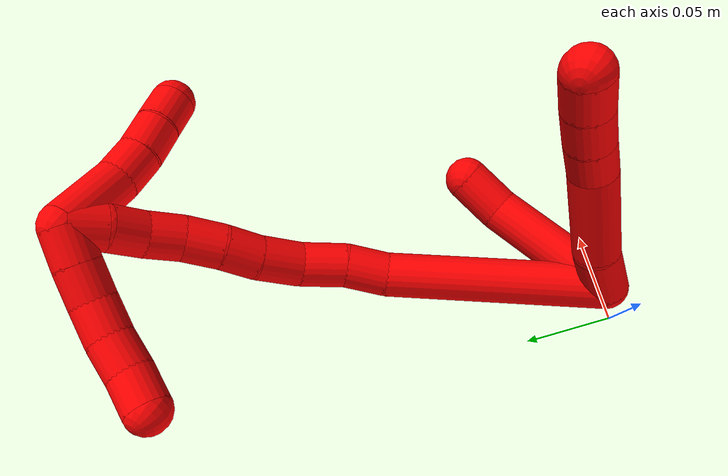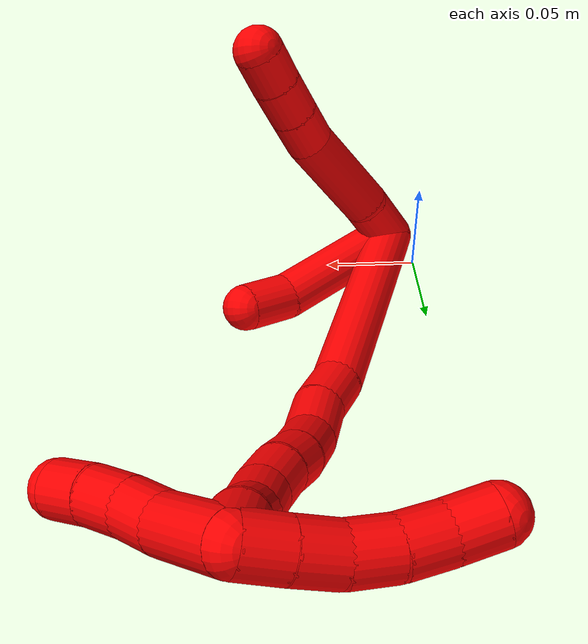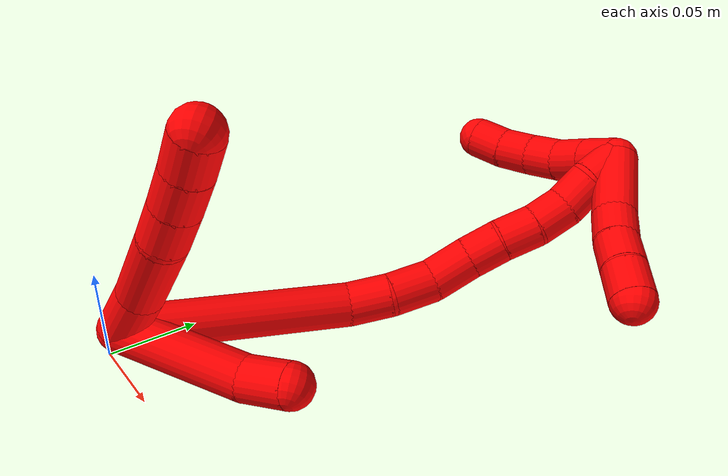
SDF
<sdf version="1.7">
 <world name="default">
  <model name="photoneo_s_sensor">
   <static>1</static>
   <pose>0 0 2 1.57079 1.57079 3.14159</pose>
   <link name="link">
    <inertial><mass>0.1</mass></inertial>
    <sensor name="sensor" type="depth">
     <update_rate>30</update_rate>
     <camera>
      <horizontal_fov>1.22</horizontal_fov>
      <image><width>1920</width><height>1200</height><format>B8G8R8</format></image>
      <clip><near>0.1</near><far>4</far></clip>
      <depth_camera><output>points</output></depth_camera>
     </camera>
     <plugin name="camera_plugin" filename="libgazebo_ros_depth_camera.so">
      <baseline>0.2</baseline>
      <alwaysOn>1</alwaysOn>
      <updateRate>0.0</updateRate>
      <cameraName>camera_ir</cameraName>
      <imageTopicName>/camera/color/image_raw</imageTopicName>
      <cameraInfoTopicName>/camera/color/camera_info</cameraInfoTopicName>
      <depthImageTopicName>/camera/depth/image_raw</depthImageTopicName>
      <depthImageCameraInfoTopicName>/camera/depth/camera_info</depthImageCameraInfoTopicName>
      <pointCloudTopicName>/camera/depth/points</pointCloudTopicName>
      <frameName>fr_optical</frameName>
      <pointCloudCutoff>0.1</pointCloudCutoff>
      <pointCloudCutoffMax>2.0</pointCloudCutoffMax>
      <distortionK1>0</distortionK1>
      <distortionK2>0</distortionK2>
      <distortionK3>0</distortionK3>
      <distortionT1>0</distortionT1>
      <distortionT2>0</distortionT2>
      <CxPrime>0</CxPrime>
      <Cx>0</Cx>
      <Cy>0</Cy>
      <focalLength>0</focalLength>
      <hackBaseline>0</hackBaseline>
     </plugin>
    </sensor>
   </link>
  </model>
  <model name="bin">
   <static>1</static>
   <link name="bottom">
    <collision name="collision-bottom">
     <pose>0 0 -0.01 0 -0 0</pose>
     <geometry><box><size>0.8 0.6 0.02</size></box></geometry>
     <surface>
      <friction><ode><mu>100</mu><mu2>100</mu2></ode></friction>
      <contact><collide_bitmask>65535</collide_bitmask></contact>
     </surface>
    </collision>
   </link>
   <link name="west_wall">
    <collision name="collision-west_wall">
     <pose>-0.41 0 0.1 0 -0 0</pose>
     <geometry><box><size>0.02 0.6 0.2</size></box></geometry>
     <surface>
      <friction><ode><mu>100</mu><mu2>100</mu2></ode></friction>
      <contact><collide_bitmask>65535</collide_bitmask></contact>
     </surface>
    </collision>
   </link>
   <link name="east_wall">
    <collision name="collision-east_wall">
     <pose>0.41 0 0.1 0 -0 0</pose>
     <geometry><box><size>0.02 0.6 0.2</size></box></geometry>
     <surface>
      <friction><ode><mu>100</mu><mu2>100</mu2></ode></friction>
      <contact><collide_bitmask>65535</collide_bitmask></contact>
     </surface>
    </collision>
   </link>
   <link name="south_wall">
    <collision name="collision-south_wall">
     <pose>0 -0.31 0.1 0 -0 0</pose>
     <geometry><box><size>0.8 0.02 0.2</size></box></geometry>
     <surface>
      <friction><ode><mu>100</mu><mu2>100</mu2></ode></friction>
      <contact><collide_bitmask>65535</collide_bitmask></contact>
     </surface>
    </collision>
   </link>
   <link name="north_wall">
    <collision name="collision-north_wall">
     <pose>0 0.31 0.1 0 -0 0</pose>
     <geometry><box><size>0.8 0.02 0.2</size></box></geometry>
     <surface>
      <friction><ode><mu>100</mu><mu2>100</mu2></ode></friction>
      <contact><collide_bitmask>65535</collide_bitmask></contact>
     </surface>
    </collision>
   </link>
  </model>
  <model name="2">
   <static>0</static>
   <link name="2">
    <collision name="collision-cylinder-e_1_2_8">
     <pose>0.015584 -0.003752 0.003926 0.762656 1.23549 0.555059</pose>
     <geometry><cylinder><radius>0.0125</radius><length>0.033007</length></cylinder></geometry>
     <surface>
      <friction><ode><mu>1.16</mu><mu2>1.16</mu2><slip1>0</slip1><slip2>0</slip2></ode></friction>
      <contact><ode><kp>1e+06</kp><kd>1</kd><max_vel>0</max_vel><min_depth>0.001</min_depth></ode></contact>
     </surface>
    </collision>
    <visual name="visual-cylinder-e_1_2_8">
     <pose>0.015584 -0.003752 0.003926 0.762656 1.23549 0.555059</pose>
     <geometry><cylinder><radius>0.0125</radius><length>0.033007</length></cylinder></geometry>
     <material><ambient>1 0 0 1</ambient></material>
    </visual>
    <collision name="collision-cylinder-e_2_8_9">
     <pose>0.056687 -0.015438 0.009037 1.42266 1.2662 1.12793</pose>
     <geometry><cylinder><radius>0.0125</radius><length>0.053498</length></cylinder></geometry>
     <surface>
      <friction><ode><mu>1.16</mu><mu2>1.16</mu2><slip1>0</slip1><slip2>0</slip2></ode></friction>
      <contact><ode><kp>1e+06</kp><kd>1</kd><max_vel>0</max_vel><min_depth>0.001</min_depth></ode></contact>
     </surface>
    </collision>
    <visual name="visual-cylinder-e_2_8_9">
     <pose>0.056687 -0.015438 0.009037 1.42266 1.2662 1.12793</pose>
     <geometry><cylinder><radius>0.0125</radius><length>0.053498</length></cylinder></geometry>
     <material><ambient>1 0 0 1</ambient></material>
    </visual>
    <collision name="collision-cylinder-e_3_9_10">
     <pose>0.092004 -0.026745 0.013142 0.85709 1.14353 0.571838</pose>
     <geometry><cylinder><radius>0.0125</radius><length>0.021535</length></cylinder></geometry>
     <surface>
      <friction><ode><mu>1.16</mu><mu2>1.16</mu2><slip1>0</slip1><slip2>0</slip2></ode></friction>
      <contact><ode><kp>1e+06</kp><kd>1</kd><max_vel>0</max_vel><min_depth>0.001</min_depth></ode></contact>
     </surface>
    </collision>
    <visual name="visual-cylinder-e_3_9_10">
     <pose>0.092004 -0.026745 0.013142 0.85709 1.14353 0.571838</pose>
     <geometry><cylinder><radius>0.0125</radius><length>0.021535</length></cylinder></geometry>
     <material><ambient>1 0 0 1</ambient></material>
    </visual>
    <collision name="collision-cylinder-e_4_10_11">
     <pose>0.111547 -0.033746 0.018742 0.934698 1.13727 0.623912</pose>
     <geometry><cylinder><radius>0.0125</radius><length>0.021474</length></cylinder></geometry>
     <surface>
      <friction><ode><mu>1.16</mu><mu2>1.16</mu2><slip1>0</slip1><slip2>0</slip2></ode></friction>
      <contact><ode><kp>1e+06</kp><kd>1</kd><max_vel>0</max_vel><min_depth>0.001</min_depth></ode></contact>
     </surface>
    </collision>
    <visual name="visual-cylinder-e_4_10_11">
     <pose>0.111547 -0.033746 0.018742 0.934698 1.13727 0.623912</pose>
     <geometry><cylinder><radius>0.0125</radius><length>0.021474</length></cylinder></geometry>
     <material><ambient>1 0 0 1</ambient></material>
    </visual>
    <collision name="collision-cylinder-e_5_11_6">
     <pose>0.130441 -0.041231 0.023935 0.993327 1.10466 0.644755</pose>
     <geometry><cylinder><radius>0.0125</radius><length>0.020487</length></cylinder></geometry>
     <surface>
      <friction><ode><mu>1.16</mu><mu2>1.16</mu2><slip1>0</slip1><slip2>0</slip2></ode></friction>
      <contact><ode><kp>1e+06</kp><kd>1</kd><max_vel>0</max_vel><min_depth>0.001</min_depth></ode></contact>
     </surface>
    </collision>
    <visual name="visual-cylinder-e_5_11_6">
     <pose>0.130441 -0.041231 0.023935 0.993327 1.10466 0.644755</pose>
     <geometry><cylinder><radius>0.0125</radius><length>0.020487</length></cylinder></geometry>
     <material><ambient>1 0 0 1</ambient></material>
    </visual>
    <collision name="collision-cylinder-e_1_2_12">
     <pose>0.024536 0.026343 -0.008136 -1.87036 0.727218 -0.952405</pose>
     <geometry><cylinder><radius>0.0125</radius><length>0.073814</length></cylinder></geometry>
     <surface>
      <friction><ode><mu>1.16</mu><mu2>1.16</mu2><slip1>0</slip1><slip2>0</slip2></ode></friction>
      <contact><ode><kp>1e+06</kp><kd>1</kd><max_vel>0</max_vel><min_depth>0.001</min_depth></ode></contact>
     </surface>
    </collision>
    <visual name="visual-cylinder-e_1_2_12">
     <pose>0.024536 0.026343 -0.008136 -1.87036 0.727218 -0.952405</pose>
     <geometry><cylinder><radius>0.0125</radius><length>0.073814</length></cylinder></geometry>
     <material><ambient>1 0 0 1</ambient></material>
    </visual>
    <collision name="collision-cylinder-e_2_12_5">
     <pose>0.060218 0.059363 -0.017883 -1.80753 1.01854 -1.23367</pose>
     <geometry><cylinder><radius>0.0125</radius><length>0.026186</length></cylinder></geometry>
     <surface>
      <friction><ode><mu>1.16</mu><mu2>1.16</mu2><slip1>0</slip1><slip2>0</slip2></ode></friction>
      <contact><ode><kp>1e+06</kp><kd>1</kd><max_vel>0</max_vel><min_depth>0.001</min_depth></ode></contact>
     </surface>
    </collision>
    <visual name="visual-cylinder-e_2_12_5">
     <pose>0.060218 0.059363 -0.017883 -1.80753 1.01854 -1.23367</pose>
     <geometry><cylinder><radius>0.0125</radius><length>0.026186</length></cylinder></geometry>
     <material><ambient>1 0 0 1</ambient></material>
    </visual>
    <collision name="collision-cylinder-e_1_2_13">
     <pose>0.02856 0.048319 0.023989 -1.10997 0.486909 -0.305586</pose>
     <geometry><cylinder><radius>0.0125</radius><length>0.12208</length></cylinder></geometry>
     <surface>
      <friction><ode><mu>1.16</mu><mu2>1.16</mu2><slip1>0</slip1><slip2>0</slip2></ode></friction>
      <contact><ode><kp>1e+06</kp><kd>1</kd><max_vel>0</max_vel><min_depth>0.001</min_depth></ode></contact>
     </surface>
    </collision>
    <visual name="visual-cylinder-e_1_2_13">
     <pose>0.02856 0.048319 0.023989 -1.10997 0.486909 -0.305586</pose>
     <geometry><cylinder><radius>0.0125</radius><length>0.12208</length></cylinder></geometry>
     <material><ambient>1 0 0 1</ambient></material>
    </visual>
    <collision name="collision-cylinder-e_2_13_14">
     <pose>0.065179 0.104404 0.052659 -1.02835 0.726512 -0.423008</pose>
     <geometry><cylinder><radius>0.0125</radius><length>0.024262</length></cylinder></geometry>
     <surface>
      <friction><ode><mu>1.16</mu><mu2>1.16</mu2><slip1>0</slip1><slip2>0</slip2></ode></friction>
      <contact><ode><kp>1e+06</kp><kd>1</kd><max_vel>0</max_vel><min_depth>0.001</min_depth></ode></contact>
     </surface>
    </collision>
    <visual name="visual-cylinder-e_2_13_14">
     <pose>0.065179 0.104404 0.052659 -1.02835 0.726512 -0.423008</pose>
     <geometry><cylinder><radius>0.0125</radius><length>0.024262</length></cylinder></geometry>
     <material><ambient>1 0 0 1</ambient></material>
    </visual>
    <collision name="collision-cylinder-e_3_14_15">
     <pose>0.080153 0.120449 0.064315 -0.870698 0.568472 -0.270107</pose>
     <geometry><cylinder><radius>0.0125</radius><length>0.025692</length></cylinder></geometry>
     <surface>
      <friction><ode><mu>1.16</mu><mu2>1.16</mu2><slip1>0</slip1><slip2>0</slip2></ode></friction>
      <contact><ode><kp>1e+06</kp><kd>1</kd><max_vel>0</max_vel><min_depth>0.001</min_depth></ode></contact>
     </surface>
    </collision>
    <visual name="visual-cylinder-e_3_14_15">
     <pose>0.080153 0.120449 0.064315 -0.870698 0.568472 -0.270107</pose>
     <geometry><cylinder><radius>0.0125</radius><length>0.025692</length></cylinder></geometry>
     <material><ambient>1 0 0 1</ambient></material>
    </visual>
    <collision name="collision-cylinder-e_4_15_16">
     <pose>0.096132 0.133488 0.078695 -0.571235 0.800054 -0.247058</pose>
     <geometry><cylinder><radius>0.0125</radius><length>0.025269</length></cylinder></geometry>
     <surface>
      <friction><ode><mu>1.16</mu><mu2>1.16</mu2><slip1>0</slip1><slip2>0</slip2></ode></friction>
      <contact><ode><kp>1e+06</kp><kd>1</kd><max_vel>0</max_vel><min_depth>0.001</min_depth></ode></contact>
     </surface>
    </collision>
    <visual name="visual-cylinder-e_4_15_16">
     <pose>0.096132 0.133488 0.078695 -0.571235 0.800054 -0.247058</pose>
     <geometry><cylinder><radius>0.0125</radius><length>0.025269</length></cylinder></geometry>
     <material><ambient>1 0 0 1</ambient></material>
    </visual>
    <collision name="collision-cylinder-e_5_16_17">
     <pose>0.113362 0.141924 0.091047 -0.639122 0.924117 -0.326653</pose>
     <geometry><cylinder><radius>0.0125</radius><length>0.020462</length></cylinder></geometry>
     <surface>
      <friction><ode><mu>1.16</mu><mu2>1.16</mu2><slip1>0</slip1><slip2>0</slip2></ode></friction>
      <contact><ode><kp>1e+06</kp><kd>1</kd><max_vel>0</max_vel><min_depth>0.001</min_depth></ode></contact>
     </surface>
    </collision>
    <visual name="visual-cylinder-e_5_16_17">
     <pose>0.113362 0.141924 0.091047 -0.639122 0.924117 -0.326653</pose>
     <geometry><cylinder><radius>0.0125</radius><length>0.020462</length></cylinder></geometry>
     <material><ambient>1 0 0 1</ambient></material>
    </visual>
    <collision name="collision-cylinder-e_6_17_18">
     <pose>0.129289 0.150735 0.101288 -0.770176 0.811073 -0.344589</pose>
     <geometry><cylinder><radius>0.0125</radius><length>0.021412</length></cylinder></geometry>
     <surface>
      <friction><ode><mu>1.16</mu><mu2>1.16</mu2><slip1>0</slip1><slip2>0</slip2></ode></friction>
      <contact><ode><kp>1e+06</kp><kd>1</kd><max_vel>0</max_vel><min_depth>0.001</min_depth></ode></contact>
     </surface>
    </collision>
    <visual name="visual-cylinder-e_6_17_18">
     <pose>0.129289 0.150735 0.101288 -0.770176 0.811073 -0.344589</pose>
     <geometry><cylinder><radius>0.0125</radius><length>0.021412</length></cylinder></geometry>
     <material><ambient>1 0 0 1</ambient></material>
    </visual>
    <collision name="collision-cylinder-e_7_18_19">
     <pose>0.143994 0.159784 0.113052 -0.544136 0.742591 -0.2164</pose>
     <geometry><cylinder><radius>0.0125</radius><length>0.020534</length></cylinder></geometry>
     <surface>
      <friction><ode><mu>1.16</mu><mu2>1.16</mu2><slip1>0</slip1><slip2>0</slip2></ode></friction>
      <contact><ode><kp>1e+06</kp><kd>1</kd><max_vel>0</max_vel><min_depth>0.001</min_depth></ode></contact>
     </surface>
    </collision>
    <visual name="visual-cylinder-e_7_18_19">
     <pose>0.143994 0.159784 0.113052 -0.544136 0.742591 -0.2164</pose>
     <geometry><cylinder><radius>0.0125</radius><length>0.020534</length></cylinder></geometry>
     <material><ambient>1 0 0 1</ambient></material>
    </visual>
    <collision name="collision-cylinder-e_8_19_20">
     <pose>0.158404 0.16486 0.126188 -0.172357 0.834716 -0.076577</pose>
     <geometry><cylinder><radius>0.0125</radius><length>0.020152</length></cylinder></geometry>
     <surface>
      <friction><ode><mu>1.16</mu><mu2>1.16</mu2><slip1>0</slip1><slip2>0</slip2></ode></friction>
      <contact><ode><kp>1e+06</kp><kd>1</kd><max_vel>0</max_vel><min_depth>0.001</min_depth></ode></contact>
     </surface>
    </collision>
    <visual name="visual-cylinder-e_8_19_20">
     <pose>0.158404 0.16486 0.126188 -0.172357 0.834716 -0.076577</pose>
     <geometry><cylinder><radius>0.0125</radius><length>0.020152</length></cylinder></geometry>
     <material><ambient>1 0 0 1</ambient></material>
    </visual>
    <collision name="collision-cylinder-e_9_20_1">
     <pose>0.172318 0.169351 0.139832 -0.445268 0.694975 -0.163621</pose>
     <geometry><cylinder><radius>0.0125</radius><length>0.020137</length></cylinder></geometry>
     <surface>
      <friction><ode><mu>1.16</mu><mu2>1.16</mu2><slip1>0</slip1><slip2>0</slip2></ode></friction>
      <contact><ode><kp>1e+06</kp><kd>1</kd><max_vel>0</max_vel><min_depth>0.001</min_depth></ode></contact>
     </surface>
    </collision>
    <visual name="visual-cylinder-e_9_20_1">
     <pose>0.172318 0.169351 0.139832 -0.445268 0.694975 -0.163621</pose>
     <geometry><cylinder><radius>0.0125</radius><length>0.020137</length></cylinder></geometry>
     <material><ambient>1 0 0 1</ambient></material>
    </visual>
    <collision name="collision-cylinder-e_1_1_21">
     <pose>0.169653 0.171551 0.15077 0.278192 -1.1464 -0.180249</pose>
     <geometry><cylinder><radius>0.0125</radius><length>0.02</length></cylinder></geometry>
     <surface>
      <friction><ode><mu>1.16</mu><mu2>1.16</mu2><slip1>0</slip1><slip2>0</slip2></ode></friction>
      <contact><ode><kp>1e+06</kp><kd>1</kd><max_vel>0</max_vel><min_depth>0.001</min_depth></ode></contact>
     </surface>
    </collision>
    <visual name="visual-cylinder-e_1_1_21">
     <pose>0.169653 0.171551 0.15077 0.278192 -1.1464 -0.180249</pose>
     <geometry><cylinder><radius>0.0125</radius><length>0.02</length></cylinder></geometry>
     <material><ambient>1 0 0 1</ambient></material>
    </visual>
    <collision name="collision-cylinder-e_2_21_22">
     <pose>0.151298 0.169039 0.158289 0.370269 -1.17905 -0.249231</pose>
     <geometry><cylinder><radius>0.0125</radius><length>0.02</length></cylinder></geometry>
     <surface>
      <friction><ode><mu>1.16</mu><mu2>1.16</mu2><slip1>0</slip1><slip2>0</slip2></ode></friction>
      <contact><ode><kp>1e+06</kp><kd>1</kd><max_vel>0</max_vel><min_depth>0.001</min_depth></ode></contact>
     </surface>
    </collision>
    <visual name="visual-cylinder-e_2_21_22">
     <pose>0.151298 0.169039 0.158289 0.370269 -1.17905 -0.249231</pose>
     <geometry><cylinder><radius>0.0125</radius><length>0.02</length></cylinder></geometry>
     <material><ambient>1 0 0 1</ambient></material>
    </visual>
    <collision name="collision-cylinder-e_3_22_23">
     <pose>0.133612 0.164284 0.166012 0.680867 -1.00521 -0.384613</pose>
     <geometry><cylinder><radius>0.0125</radius><length>0.02</length></cylinder></geometry>
     <surface>
      <friction><ode><mu>1.16</mu><mu2>1.16</mu2><slip1>0</slip1><slip2>0</slip2></ode></friction>
      <contact><ode><kp>1e+06</kp><kd>1</kd><max_vel>0</max_vel><min_depth>0.001</min_depth></ode></contact>
     </surface>
    </collision>
    <visual name="visual-cylinder-e_3_22_23">
     <pose>0.133612 0.164284 0.166012 0.680867 -1.00521 -0.384613</pose>
     <geometry><cylinder><radius>0.0125</radius><length>0.02</length></cylinder></geometry>
     <material><ambient>1 0 0 1</ambient></material>
    </visual>
    <collision name="collision-cylinder-e_4_23_24">
     <pose>0.117158 0.156198 0.173864 0.906786 -0.929323 -0.479103</pose>
     <geometry><cylinder><radius>0.0125</radius><length>0.02</length></cylinder></geometry>
     <surface>
      <friction><ode><mu>1.16</mu><mu2>1.16</mu2><slip1>0</slip1><slip2>0</slip2></ode></friction>
      <contact><ode><kp>1e+06</kp><kd>1</kd><max_vel>0</max_vel><min_depth>0.001</min_depth></ode></contact>
     </surface>
    </collision>
    <visual name="visual-cylinder-e_4_23_24">
     <pose>0.117158 0.156198 0.173864 0.906786 -0.929323 -0.479103</pose>
     <geometry><cylinder><radius>0.0125</radius><length>0.02</length></cylinder></geometry>
     <material><ambient>1 0 0 1</ambient></material>
    </visual>
    <collision name="collision-cylinder-e_5_24_4">
     <pose>0.102095 0.146129 0.182198 0.85628 -0.782524 -0.372178</pose>
     <geometry><cylinder><radius>0.0125</radius><length>0.02</length></cylinder></geometry>
     <surface>
      <friction><ode><mu>1.16</mu><mu2>1.16</mu2><slip1>0</slip1><slip2>0</slip2></ode></friction>
      <contact><ode><kp>1e+06</kp><kd>1</kd><max_vel>0</max_vel><min_depth>0.001</min_depth></ode></contact>
     </surface>
    </collision>
    <visual name="visual-cylinder-e_5_24_4">
     <pose>0.102095 0.146129 0.182198 0.85628 -0.782524 -0.372178</pose>
     <geometry><cylinder><radius>0.0125</radius><length>0.02</length></cylinder></geometry>
     <material><ambient>1 0 0 1</ambient></material>
    </visual>
    <collision name="collision-cylinder-e_1_1_25">
     <pose>0.178279 0.173563 0.126888 -3.0974 -0.024382 1.00815</pose>
     <geometry><cylinder><radius>0.0125</radius><length>0.039897</length></cylinder></geometry>
     <surface>
      <friction><ode><mu>1.16</mu><mu2>1.16</mu2><slip1>0</slip1><slip2>0</slip2></ode></friction>
      <contact><ode><kp>1e+06</kp><kd>1</kd><max_vel>0</max_vel><min_depth>0.001</min_depth></ode></contact>
     </surface>
    </collision>
    <visual name="visual-cylinder-e_1_1_25">
     <pose>0.178279 0.173563 0.126888 -3.0974 -0.024382 1.00815</pose>
     <geometry><cylinder><radius>0.0125</radius><length>0.039897</length></cylinder></geometry>
     <material><ambient>1 0 0 1</ambient></material>
    </visual>
    <collision name="collision-cylinder-e_2_25_26">
     <pose>0.179333 0.173613 0.097118 3.05735 0.154577 2.14485</pose>
     <geometry><cylinder><radius>0.0125</radius><length>0.020001</length></cylinder></geometry>
     <surface>
      <friction><ode><mu>1.16</mu><mu2>1.16</mu2><slip1>0</slip1><slip2>0</slip2></ode></friction>
      <contact><ode><kp>1e+06</kp><kd>1</kd><max_vel>0</max_vel><min_depth>0.001</min_depth></ode></contact>
     </surface>
    </collision>
    <visual name="visual-cylinder-e_2_25_26">
     <pose>0.179333 0.173613 0.097118 3.05735 0.154577 2.14485</pose>
     <geometry><cylinder><radius>0.0125</radius><length>0.020001</length></cylinder></geometry>
     <material><ambient>1 0 0 1</ambient></material>
    </visual>
    <collision name="collision-cylinder-e_3_26_27">
     <pose>0.183525 0.172689 0.077585 3.13209 0.267283 3.07093</pose>
     <geometry><cylinder><radius>0.0125</radius><length>0.020087</length></cylinder></geometry>
     <surface>
      <friction><ode><mu>1.16</mu><mu2>1.16</mu2><slip1>0</slip1><slip2>0</slip2></ode></friction>
      <contact><ode><kp>1e+06</kp><kd>1</kd><max_vel>0</max_vel><min_depth>0.001</min_depth></ode></contact>
     </surface>
    </collision>
    <visual name="visual-cylinder-e_3_26_27">
     <pose>0.183525 0.172689 0.077585 3.13209 0.267283 3.07093</pose>
     <geometry><cylinder><radius>0.0125</radius><length>0.020087</length></cylinder></geometry>
     <material><ambient>1 0 0 1</ambient></material>
    </visual>
    <collision name="collision-cylinder-e_4_27_3">
     <pose>0.188303 0.173534 0.058165 -3.04566 0.213977 -2.30092</pose>
     <geometry><cylinder><radius>0.0125</radius><length>0.020015</length></cylinder></geometry>
     <surface>
      <friction><ode><mu>1.16</mu><mu2>1.16</mu2><slip1>0</slip1><slip2>0</slip2></ode></friction>
      <contact><ode><kp>1e+06</kp><kd>1</kd><max_vel>0</max_vel><min_depth>0.001</min_depth></ode></contact>
     </surface>
    </collision>
    <visual name="visual-cylinder-e_4_27_3">
     <pose>0.188303 0.173534 0.058165 -3.04566 0.213977 -2.30092</pose>
     <geometry><cylinder><radius>0.0125</radius><length>0.020015</length></cylinder></geometry>
     <material><ambient>1 0 0 1</ambient></material>
    </visual>
    <collision name="collision-sphere-3">
     <pose>0.190428 0.174471 0.048431 0 -0 0</pose>
     <geometry><sphere><radius>0.0125</radius></sphere></geometry>
     <surface>
      <friction><ode><mu>1.16</mu><mu2>1.16</mu2><slip1>0</slip1><slip2>0</slip2></ode></friction>
      <contact><ode><kp>1e+06</kp><kd>1</kd><max_vel>0</max_vel><min_depth>0.001</min_depth></ode></contact>
     </surface>
    </collision>
    <visual name="visual-sphere-3">
     <pose>0.190428 0.174471 0.048431 0 -0 0</pose>
     <geometry><sphere><radius>0.0125</radius></sphere></geometry>
     <material><ambient>1 0 0 1</ambient></material>
    </visual>
    <collision name="collision-sphere-27">
     <pose>0.186178 0.172597 0.067899 0 -0 0</pose>
     <geometry><sphere><radius>0.0125</radius></sphere></geometry>
     <surface>
      <friction><ode><mu>1.16</mu><mu2>1.16</mu2><slip1>0</slip1><slip2>0</slip2></ode></friction>
      <contact><ode><kp>1e+06</kp><kd>1</kd><max_vel>0</max_vel><min_depth>0.001</min_depth></ode></contact>
     </surface>
    </collision>
    <visual name="visual-sphere-27">
     <pose>0.186178 0.172597 0.067899 0 -0 0</pose>
     <geometry><sphere><radius>0.0125</radius></sphere></geometry>
     <material><ambient>1 0 0 1</ambient></material>
    </visual>
    <collision name="collision-sphere-26">
     <pose>0.180873 0.172781 0.087272 0 -0 0</pose>
     <geometry><sphere><radius>0.0125</radius></sphere></geometry>
     <surface>
      <friction><ode><mu>1.16</mu><mu2>1.16</mu2><slip1>0</slip1><slip2>0</slip2></ode></friction>
      <contact><ode><kp>1e+06</kp><kd>1</kd><max_vel>0</max_vel><min_depth>0.001</min_depth></ode></contact>
     </surface>
    </collision>
    <visual name="visual-sphere-26">
     <pose>0.180873 0.172781 0.087272 0 -0 0</pose>
     <geometry><sphere><radius>0.0125</radius></sphere></geometry>
     <material><ambient>1 0 0 1</ambient></material>
    </visual>
    <collision name="collision-sphere-25">
     <pose>0.177793 0.174444 0.106964 0 -0 0</pose>
     <geometry><sphere><radius>0.0125</radius></sphere></geometry>
     <surface>
      <friction><ode><mu>1.16</mu><mu2>1.16</mu2><slip1>0</slip1><slip2>0</slip2></ode></friction>
      <contact><ode><kp>1e+06</kp><kd>1</kd><max_vel>0</max_vel><min_depth>0.001</min_depth></ode></contact>
     </surface>
    </collision>
    <visual name="visual-sphere-25">
     <pose>0.177793 0.174444 0.106964 0 -0 0</pose>
     <geometry><sphere><radius>0.0125</radius></sphere></geometry>
     <material><ambient>1 0 0 1</ambient></material>
    </visual>
    <collision name="collision-sphere-4">
     <pose>0.095044 0.140772 0.186845 0 -0 0</pose>
     <geometry><sphere><radius>0.0125</radius></sphere></geometry>
     <surface>
      <friction><ode><mu>1.16</mu><mu2>1.16</mu2><slip1>0</slip1><slip2>0</slip2></ode></friction>
      <contact><ode><kp>1e+06</kp><kd>1</kd><max_vel>0</max_vel><min_depth>0.001</min_depth></ode></contact>
     </surface>
    </collision>
    <visual name="visual-sphere-4">
     <pose>0.095044 0.140772 0.186845 0 -0 0</pose>
     <geometry><sphere><radius>0.0125</radius></sphere></geometry>
     <material><ambient>1 0 0 1</ambient></material>
    </visual>
    <collision name="collision-sphere-24">
     <pose>0.109145 0.151486 0.177552 0 -0 0</pose>
     <geometry><sphere><radius>0.0125</radius></sphere></geometry>
     <surface>
      <friction><ode><mu>1.16</mu><mu2>1.16</mu2><slip1>0</slip1><slip2>0</slip2></ode></friction>
      <contact><ode><kp>1e+06</kp><kd>1</kd><max_vel>0</max_vel><min_depth>0.001</min_depth></ode></contact>
     </surface>
    </collision>
    <visual name="visual-sphere-24">
     <pose>0.109145 0.151486 0.177552 0 -0 0</pose>
     <geometry><sphere><radius>0.0125</radius></sphere></geometry>
     <material><ambient>1 0 0 1</ambient></material>
    </visual>
    <collision name="collision-sphere-23">
     <pose>0.12517 0.16091 0.170176 0 -0 0</pose>
     <geometry><sphere><radius>0.0125</radius></sphere></geometry>
     <surface>
      <friction><ode><mu>1.16</mu><mu2>1.16</mu2><slip1>0</slip1><slip2>0</slip2></ode></friction>
      <contact><ode><kp>1e+06</kp><kd>1</kd><max_vel>0</max_vel><min_depth>0.001</min_depth></ode></contact>
     </surface>
    </collision>
    <visual name="visual-sphere-23">
     <pose>0.12517 0.16091 0.170176 0 -0 0</pose>
     <geometry><sphere><radius>0.0125</radius></sphere></geometry>
     <material><ambient>1 0 0 1</ambient></material>
    </visual>
    <collision name="collision-sphere-22">
     <pose>0.142055 0.167657 0.161848 0 -0 0</pose>
     <geometry><sphere><radius>0.0125</radius></sphere></geometry>
     <surface>
      <friction><ode><mu>1.16</mu><mu2>1.16</mu2><slip1>0</slip1><slip2>0</slip2></ode></friction>
      <contact><ode><kp>1e+06</kp><kd>1</kd><max_vel>0</max_vel><min_depth>0.001</min_depth></ode></contact>
     </surface>
    </collision>
    <visual name="visual-sphere-22">
     <pose>0.142055 0.167657 0.161848 0 -0 0</pose>
     <geometry><sphere><radius>0.0125</radius></sphere></geometry>
     <material><ambient>1 0 0 1</ambient></material>
    </visual>
    <collision name="collision-sphere-21">
     <pose>0.16054 0.17042 0.154729 0 -0 0</pose>
     <geometry><sphere><radius>0.0125</radius></sphere></geometry>
     <surface>
      <friction><ode><mu>1.16</mu><mu2>1.16</mu2><slip1>0</slip1><slip2>0</slip2></ode></friction>
      <contact><ode><kp>1e+06</kp><kd>1</kd><max_vel>0</max_vel><min_depth>0.001</min_depth></ode></contact>
     </surface>
    </collision>
    <visual name="visual-sphere-21">
     <pose>0.16054 0.17042 0.154729 0 -0 0</pose>
     <geometry><sphere><radius>0.0125</radius></sphere></geometry>
     <material><ambient>1 0 0 1</ambient></material>
    </visual>
    <collision name="collision-sphere-1">
     <pose>0.178766 0.172682 0.146811 0 -0 0</pose>
     <geometry><sphere><radius>0.0125</radius></sphere></geometry>
     <surface>
      <friction><ode><mu>1.16</mu><mu2>1.16</mu2><slip1>0</slip1><slip2>0</slip2></ode></friction>
      <contact><ode><kp>1e+06</kp><kd>1</kd><max_vel>0</max_vel><min_depth>0.001</min_depth></ode></contact>
     </surface>
    </collision>
    <visual name="visual-sphere-1">
     <pose>0.178766 0.172682 0.146811 0 -0 0</pose>
     <geometry><sphere><radius>0.0125</radius></sphere></geometry>
     <material><ambient>1 0 0 1</ambient></material>
    </visual>
    <collision name="collision-sphere-6">
     <pose>0.139591 -0.045088 0.026448 0 -0 0</pose>
     <geometry><sphere><radius>0.0125</radius></sphere></geometry>
     <surface>
      <friction><ode><mu>1.16</mu><mu2>1.16</mu2><slip1>0</slip1><slip2>0</slip2></ode></friction>
      <contact><ode><kp>1e+06</kp><kd>1</kd><max_vel>0</max_vel><min_depth>0.001</min_depth></ode></contact>
     </surface>
    </collision>
    <visual name="visual-sphere-6">
     <pose>0.139591 -0.045088 0.026448 0 -0 0</pose>
     <geometry><sphere><radius>0.0125</radius></sphere></geometry>
     <material><ambient>1 0 0 1</ambient></material>
    </visual>
    <collision name="collision-sphere-11">
     <pose>0.12129 -0.037374 0.021421 0 -0 0</pose>
     <geometry><sphere><radius>0.0125</radius></sphere></geometry>
     <surface>
      <friction><ode><mu>1.16</mu><mu2>1.16</mu2><slip1>0</slip1><slip2>0</slip2></ode></friction>
      <contact><ode><kp>1e+06</kp><kd>1</kd><max_vel>0</max_vel><min_depth>0.001</min_depth></ode></contact>
     </surface>
    </collision>
    <visual name="visual-sphere-11">
     <pose>0.12129 -0.037374 0.021421 0 -0 0</pose>
     <geometry><sphere><radius>0.0125</radius></sphere></geometry>
     <material><ambient>1 0 0 1</ambient></material>
    </visual>
    <collision name="collision-sphere-10">
     <pose>0.101803 -0.030118 0.016063 0 -0 0</pose>
     <geometry><sphere><radius>0.0125</radius></sphere></geometry>
     <surface>
      <friction><ode><mu>1.16</mu><mu2>1.16</mu2><slip1>0</slip1><slip2>0</slip2></ode></friction>
      <contact><ode><kp>1e+06</kp><kd>1</kd><max_vel>0</max_vel><min_depth>0.001</min_depth></ode></contact>
     </surface>
    </collision>
    <visual name="visual-sphere-10">
     <pose>0.101803 -0.030118 0.016063 0 -0 0</pose>
     <geometry><sphere><radius>0.0125</radius></sphere></geometry>
     <material><ambient>1 0 0 1</ambient></material>
    </visual>
    <collision name="collision-sphere-9">
     <pose>0.082204 -0.023372 0.010221 0 -0 0</pose>
     <geometry><sphere><radius>0.0125</radius></sphere></geometry>
     <surface>
      <friction><ode><mu>1.16</mu><mu2>1.16</mu2><slip1>0</slip1><slip2>0</slip2></ode></friction>
      <contact><ode><kp>1e+06</kp><kd>1</kd><max_vel>0</max_vel><min_depth>0.001</min_depth></ode></contact>
     </surface>
    </collision>
    <visual name="visual-sphere-9">
     <pose>0.082204 -0.023372 0.010221 0 -0 0</pose>
     <geometry><sphere><radius>0.0125</radius></sphere></geometry>
     <material><ambient>1 0 0 1</ambient></material>
    </visual>
    <collision name="collision-sphere-2">
     <geometry><sphere><radius>0.0125</radius></sphere></geometry>
     <surface>
      <friction><ode><mu>1.16</mu><mu2>1.16</mu2><slip1>0</slip1><slip2>0</slip2></ode></friction>
      <contact><ode><kp>1e+06</kp><kd>1</kd><max_vel>0</max_vel><min_depth>0.001</min_depth></ode></contact>
     </surface>
    </collision>
    <visual name="visual-sphere-2">
     <geometry><sphere><radius>0.0125</radius></sphere></geometry>
     <material><ambient>1 0 0 1</ambient></material>
    </visual>
    <collision name="collision-sphere-19">
     <pose>0.150937 0.1637 0.119523 0 -0 0</pose>
     <geometry><sphere><radius>0.0125</radius></sphere></geometry>
     <surface>
      <friction><ode><mu>1.16</mu><mu2>1.16</mu2><slip1>0</slip1><slip2>0</slip2></ode></friction>
      <contact><ode><kp>1e+06</kp><kd>1</kd><max_vel>0</max_vel><min_depth>0.001</min_depth></ode></contact>
     </surface>
    </collision>
    <visual name="visual-sphere-19">
     <pose>0.150937 0.1637 0.119523 0 -0 0</pose>
     <geometry><sphere><radius>0.0125</radius></sphere></geometry>
     <material><ambient>1 0 0 1</ambient></material>
    </visual>
    <collision name="collision-sphere-8">
     <pose>0.031169 -0.007503 0.007853 0 -0 0</pose>
     <geometry><sphere><radius>0.0125</radius></sphere></geometry>
     <surface>
      <friction><ode><mu>1.16</mu><mu2>1.16</mu2><slip1>0</slip1><slip2>0</slip2></ode></friction>
      <contact><ode><kp>1e+06</kp><kd>1</kd><max_vel>0</max_vel><min_depth>0.001</min_depth></ode></contact>
     </surface>
    </collision>
    <visual name="visual-sphere-8">
     <pose>0.031169 -0.007503 0.007853 0 -0 0</pose>
     <geometry><sphere><radius>0.0125</radius></sphere></geometry>
     <material><ambient>1 0 0 1</ambient></material>
    </visual>
    <collision name="collision-sphere-12">
     <pose>0.049071 0.052686 -0.016272 0 -0 0</pose>
     <geometry><sphere><radius>0.0125</radius></sphere></geometry>
     <surface>
      <friction><ode><mu>1.16</mu><mu2>1.16</mu2><slip1>0</slip1><slip2>0</slip2></ode></friction>
      <contact><ode><kp>1e+06</kp><kd>1</kd><max_vel>0</max_vel><min_depth>0.001</min_depth></ode></contact>
     </surface>
    </collision>
    <visual name="visual-sphere-12">
     <pose>0.049071 0.052686 -0.016272 0 -0 0</pose>
     <geometry><sphere><radius>0.0125</radius></sphere></geometry>
     <material><ambient>1 0 0 1</ambient></material>
    </visual>
    <collision name="collision-sphere-5">
     <pose>0.071364 0.06604 -0.019494 0 -0 0</pose>
     <geometry><sphere><radius>0.0125</radius></sphere></geometry>
     <surface>
      <friction><ode><mu>1.16</mu><mu2>1.16</mu2><slip1>0</slip1><slip2>0</slip2></ode></friction>
      <contact><ode><kp>1e+06</kp><kd>1</kd><max_vel>0</max_vel><min_depth>0.001</min_depth></ode></contact>
     </surface>
    </collision>
    <visual name="visual-sphere-5">
     <pose>0.071364 0.06604 -0.019494 0 -0 0</pose>
     <geometry><sphere><radius>0.0125</radius></sphere></geometry>
     <material><ambient>1 0 0 1</ambient></material>
    </visual>
    <collision name="collision-sphere-13">
     <pose>0.057121 0.096638 0.047978 0 -0 0</pose>
     <geometry><sphere><radius>0.0125</radius></sphere></geometry>
     <surface>
      <friction><ode><mu>1.16</mu><mu2>1.16</mu2><slip1>0</slip1><slip2>0</slip2></ode></friction>
      <contact><ode><kp>1e+06</kp><kd>1</kd><max_vel>0</max_vel><min_depth>0.001</min_depth></ode></contact>
     </surface>
    </collision>
    <visual name="visual-sphere-13">
     <pose>0.057121 0.096638 0.047978 0 -0 0</pose>
     <geometry><sphere><radius>0.0125</radius></sphere></geometry>
     <material><ambient>1 0 0 1</ambient></material>
    </visual>
    <collision name="collision-sphere-14">
     <pose>0.073237 0.11217 0.05734 0 -0 0</pose>
     <geometry><sphere><radius>0.0125</radius></sphere></geometry>
     <surface>
      <friction><ode><mu>1.16</mu><mu2>1.16</mu2><slip1>0</slip1><slip2>0</slip2></ode></friction>
      <contact><ode><kp>1e+06</kp><kd>1</kd><max_vel>0</max_vel><min_depth>0.001</min_depth></ode></contact>
     </surface>
    </collision>
    <visual name="visual-sphere-14">
     <pose>0.073237 0.11217 0.05734 0 -0 0</pose>
     <geometry><sphere><radius>0.0125</radius></sphere></geometry>
     <material><ambient>1 0 0 1</ambient></material>
    </visual>
    <collision name="collision-sphere-15">
     <pose>0.087068 0.128729 0.07129 0 -0 0</pose>
     <geometry><sphere><radius>0.0125</radius></sphere></geometry>
     <surface>
      <friction><ode><mu>1.16</mu><mu2>1.16</mu2><slip1>0</slip1><slip2>0</slip2></ode></friction>
      <contact><ode><kp>1e+06</kp><kd>1</kd><max_vel>0</max_vel><min_depth>0.001</min_depth></ode></contact>
     </surface>
    </collision>
    <visual name="visual-sphere-15">
     <pose>0.087068 0.128729 0.07129 0 -0 0</pose>
     <geometry><sphere><radius>0.0125</radius></sphere></geometry>
     <material><ambient>1 0 0 1</ambient></material>
    </visual>
    <collision name="collision-sphere-16">
     <pose>0.105196 0.138247 0.086099 0 -0 0</pose>
     <geometry><sphere><radius>0.0125</radius></sphere></geometry>
     <surface>
      <friction><ode><mu>1.16</mu><mu2>1.16</mu2><slip1>0</slip1><slip2>0</slip2></ode></friction>
      <contact><ode><kp>1e+06</kp><kd>1</kd><max_vel>0</max_vel><min_depth>0.001</min_depth></ode></contact>
     </surface>
    </collision>
    <visual name="visual-sphere-16">
     <pose>0.105196 0.138247 0.086099 0 -0 0</pose>
     <geometry><sphere><radius>0.0125</radius></sphere></geometry>
     <material><ambient>1 0 0 1</ambient></material>
    </visual>
    <collision name="collision-sphere-17">
     <pose>0.121527 0.145601 0.095995 0 -0 0</pose>
     <geometry><sphere><radius>0.0125</radius></sphere></geometry>
     <surface>
      <friction><ode><mu>1.16</mu><mu2>1.16</mu2><slip1>0</slip1><slip2>0</slip2></ode></friction>
      <contact><ode><kp>1e+06</kp><kd>1</kd><max_vel>0</max_vel><min_depth>0.001</min_depth></ode></contact>
     </surface>
    </collision>
    <visual name="visual-sphere-17">
     <pose>0.121527 0.145601 0.095995 0 -0 0</pose>
     <geometry><sphere><radius>0.0125</radius></sphere></geometry>
     <material><ambient>1 0 0 1</ambient></material>
    </visual>
    <collision name="collision-sphere-18">
     <pose>0.137051 0.155869 0.10658 0 -0 0</pose>
     <geometry><sphere><radius>0.0125</radius></sphere></geometry>
     <surface>
      <friction><ode><mu>1.16</mu><mu2>1.16</mu2><slip1>0</slip1><slip2>0</slip2></ode></friction>
      <contact><ode><kp>1e+06</kp><kd>1</kd><max_vel>0</max_vel><min_depth>0.001</min_depth></ode></contact>
     </surface>
    </collision>
    <visual name="visual-sphere-18">
     <pose>0.137051 0.155869 0.10658 0 -0 0</pose>
     <geometry><sphere><radius>0.0125</radius></sphere></geometry>
     <material><ambient>1 0 0 1</ambient></material>
    </visual>
    <collision name="collision-sphere-20">
     <pose>0.165871 0.166021 0.132852 0 -0 0</pose>
     <geometry><sphere><radius>0.0125</radius></sphere></geometry>
     <surface>
      <friction><ode><mu>1.16</mu><mu2>1.16</mu2><slip1>0</slip1><slip2>0</slip2></ode></friction>
      <contact><ode><kp>1e+06</kp><kd>1</kd><max_vel>0</max_vel><min_depth>0.001</min_depth></ode></contact>
     </surface>
    </collision>
    <visual name="visual-sphere-20">
     <pose>0.165871 0.166021 0.132852 0 -0 0</pose>
     <geometry><sphere><radius>0.0125</radius></sphere></geometry>
     <material><ambient>1 0 0 1</ambient></material>
    </visual>
    <inertial>
     <pose>0.093171 0.086576 0.062172 0 -0 0</pose>
     <mass>0.75</mass>
     <inertia>
      <ixx>0.000135</ixx>
      <ixy>0</ixy>
      <ixz>0</ixz>
      <iyy>9.7e-05</iyy>
      <iyz>0</iyz>
      <izz>-0.000268</izz>
     </inertia>
    </inertial>
   </link>
   <pose>0.016185 0.004421 0.023733 -0.97494 -0.654601 0.348767</pose>
  </model>
 </world>
</sdf>
